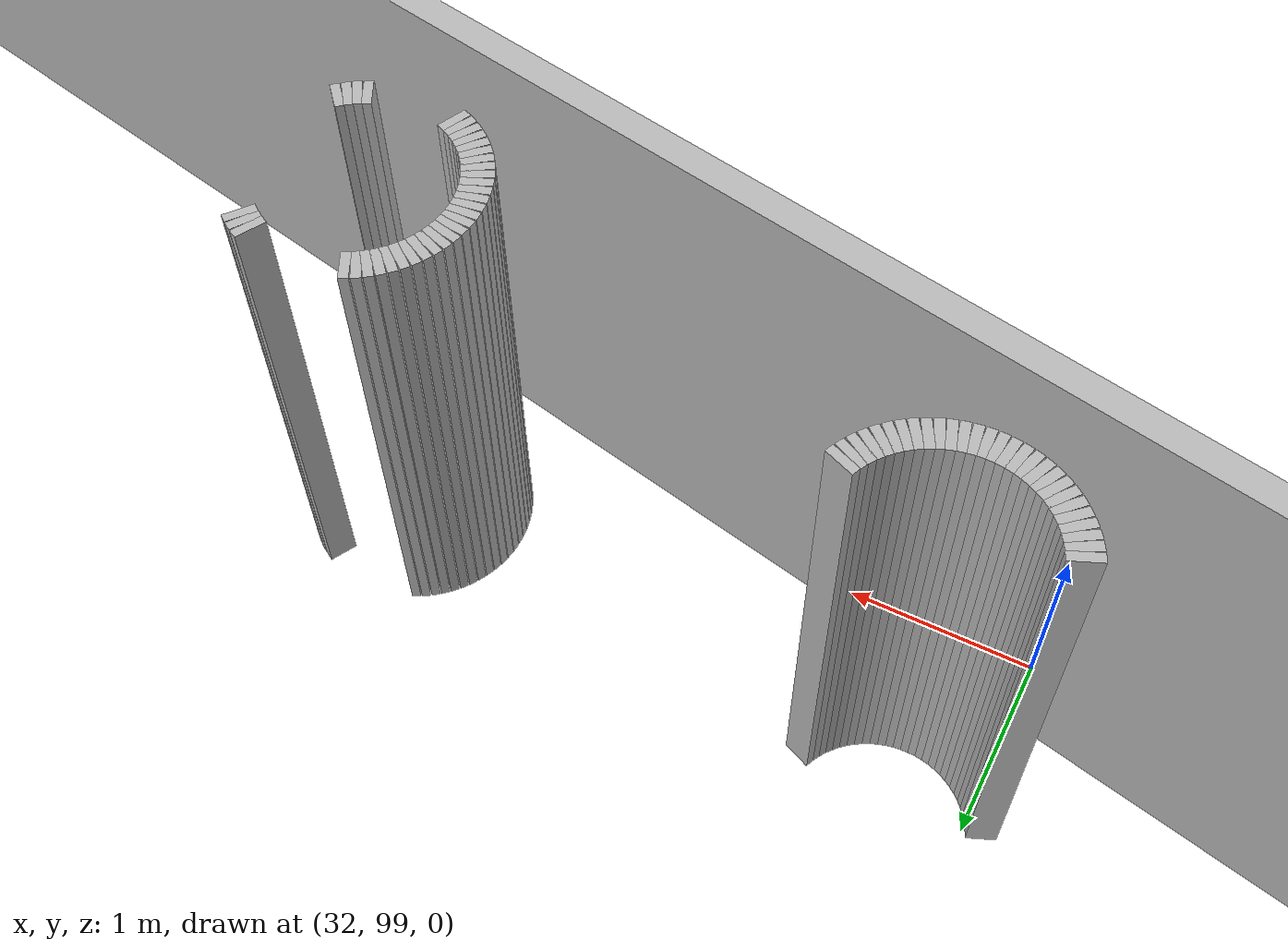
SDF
<sdf version="1.6">
 <model name="sps_1301">
  <static>1</static>
  <allow_auto_disable>0</allow_auto_disable>
  <link name="Wall2087">
   <collision name="collision"><geometry><box><size>0.0452834 0.15 2.5</size></box></geometry></collision>
   <visual name="visual">
    <geometry><box><size>0.0452834 0.15 2.5</size></box></geometry>
    <transparency>0.0</transparency>
   </visual>
   <pose>32.868 99.9762 1.25 0 0 -1.96507</pose>
  </link>
  <link name="Wall2088">
   <collision name="collision"><geometry><box><size>0.0455348 0.15 2.5</size></box></geometry></collision>
   <visual name="visual">
    <geometry><box><size>0.0455348 0.15 2.5</size></box></geometry>
    <transparency>0.0</transparency>
   </visual>
   <pose>32.8488 99.9351 1.25 0 0 -2.05003</pose>
  </link>
  <link name="Wall2089">
   <collision name="collision"><geometry><box><size>0.0452906 0.15 2.5</size></box></geometry></collision>
   <visual name="visual">
    <geometry><box><size>0.0452906 0.15 2.5</size></box></geometry>
    <transparency>0.0</transparency>
   </visual>
   <pose>32.8261 99.8958 1.25 0 0 -2.14011</pose>
  </link>
  <link name="Wall2090">
   <collision name="collision"><geometry><box><size>0.0453637 0.15 2.5</size></box></geometry></collision>
   <visual name="visual">
    <geometry><box><size>0.0453637 0.15 2.5</size></box></geometry>
    <transparency>0.0</transparency>
   </visual>
   <pose>32.8001 99.8587 1.25 0 0 -2.22452</pose>
  </link>
  <link name="Wall2091">
   <collision name="collision"><geometry><box><size>0.0453598 0.15 2.5</size></box></geometry></collision>
   <visual name="visual">
    <geometry><box><size>0.0453598 0.15 2.5</size></box></geometry>
    <transparency>0.0</transparency>
   </visual>
   <pose>32.771 99.824 1.25 0 0 -2.31241</pose>
  </link>
  <link name="Wall2092">
   <collision name="collision"><geometry><box><size>0.0454087 0.15 2.5</size></box></geometry></collision>
   <visual name="visual">
    <geometry><box><size>0.0454087 0.15 2.5</size></box></geometry>
    <transparency>0.0</transparency>
   </visual>
   <pose>32.7389 99.792 1.25 0 0 -2.40278</pose>
  </link>
  <link name="Wall2093">
   <collision name="collision"><geometry><box><size>0.0453637 0.15 2.5</size></box></geometry></collision>
   <visual name="visual">
    <geometry><box><size>0.0453637 0.15 2.5</size></box></geometry>
    <transparency>0.0</transparency>
   </visual>
   <pose>32.7041 99.7629 1.25 0 0 -2.48787</pose>
  </link>
  <link name="Wall2094">
   <collision name="collision"><geometry><box><size>0.045342 0.15 2.5</size></box></geometry></collision>
   <visual name="visual">
    <geometry><box><size>0.045342 0.15 2.5</size></box></geometry>
    <transparency>0.0</transparency>
   </visual>
   <pose>32.667 99.7369 1.25 0 0 -2.57301</pose>
  </link>
  <link name="Wall2095">
   <collision name="collision"><geometry><box><size>0.0453724 0.15 2.5</size></box></geometry></collision>
   <visual name="visual">
    <geometry><box><size>0.0453724 0.15 2.5</size></box></geometry>
    <transparency>0.0</transparency>
   </visual>
   <pose>32.6277 99.7142 1.25 0 0 -2.6605</pose>
  </link>
  <link name="Wall2096">
   <collision name="collision"><geometry><box><size>0.0453827 0.15 2.5</size></box></geometry></collision>
   <visual name="visual">
    <geometry><box><size>0.0453827 0.15 2.5</size></box></geometry>
    <transparency>0.0</transparency>
   </visual>
   <pose>32.5866 99.6951 1.25 0 0 -2.75259</pose>
  </link>
  <link name="Wall2097">
   <collision name="collision"><geometry><box><size>0.0452475 0.15 2.5</size></box></geometry></collision>
   <visual name="visual">
    <geometry><box><size>0.0452475 0.15 2.5</size></box></geometry>
    <transparency>0.0</transparency>
   </visual>
   <pose>32.5441 99.6797 1.25 0 0 -2.83605</pose>
  </link>
  <link name="Wall2098">
   <collision name="collision"><geometry><box><size>0.0453551 0.15 2.5</size></box></geometry></collision>
   <visual name="visual">
    <geometry><box><size>0.0453551 0.15 2.5</size></box></geometry>
    <transparency>0.0</transparency>
   </visual>
   <pose>32.5004 99.6679 1.25 0 0 -2.92044</pose>
  </link>
  <link name="Wall2099">
   <collision name="collision"><geometry><box><size>0.0453551 0.15 2.5</size></box></geometry></collision>
   <visual name="visual">
    <geometry><box><size>0.0453551 0.15 2.5</size></box></geometry>
    <transparency>0.0</transparency>
   </visual>
   <pose>32.4557 99.66 1.25 0 0 -3.0134</pose>
  </link>
  <link name="Wall2100">
   <collision name="collision"><geometry><box><size>0.0454548 0.15 2.5</size></box></geometry></collision>
   <visual name="visual">
    <geometry><box><size>0.0454548 0.15 2.5</size></box></geometry>
    <transparency>0.0</transparency>
   </visual>
   <pose>32.4105 99.6561 1.25 0 0 -3.09727</pose>
  </link>
  <link name="Wall2101">
   <collision name="collision"><geometry><box><size>0.0454548 0.15 2.5</size></box></geometry></collision>
   <visual name="visual">
    <geometry><box><size>0.0454548 0.15 2.5</size></box></geometry>
    <transparency>0.0</transparency>
   </visual>
   <pose>32.3651 99.6561 1.25 0 -0 3.09727</pose>
  </link>
  <link name="Wall2102">
   <collision name="collision"><geometry><box><size>0.0451973 0.15 2.5</size></box></geometry></collision>
   <visual name="visual">
    <geometry><box><size>0.0451973 0.15 2.5</size></box></geometry>
    <transparency>0.0</transparency>
   </visual>
   <pose>32.32 99.6601 1.25 0 -0 3.00886</pose>
  </link>
  <link name="Wall2103">
   <collision name="collision"><geometry><box><size>0.0454345 0.15 2.5</size></box></geometry></collision>
   <visual name="visual">
    <geometry><box><size>0.0454345 0.15 2.5</size></box></geometry>
    <transparency>0.0</transparency>
   </visual>
   <pose>32.2754 99.668 1.25 0 -0 2.92496</pose>
  </link>
  <link name="Wall2104">
   <collision name="collision"><geometry><box><size>0.0453057 0.15 2.5</size></box></geometry></collision>
   <visual name="visual">
    <geometry><box><size>0.0453057 0.15 2.5</size></box></geometry>
    <transparency>0.0</transparency>
   </visual>
   <pose>32.2317 99.6797 1.25 0 -0 2.83646</pose>
  </link>
  <link name="Wall2105">
   <collision name="collision"><geometry><box><size>0.0454525 0.15 2.5</size></box></geometry></collision>
   <visual name="visual">
    <geometry><box><size>0.0454525 0.15 2.5</size></box></geometry>
    <transparency>0.0</transparency>
   </visual>
   <pose>32.189 99.6952 1.25 0 -0 2.74887</pose>
  </link>
  <link name="Wall2106">
   <collision name="collision"><geometry><box><size>0.0453724 0.15 2.5</size></box></geometry></collision>
   <visual name="visual">
    <geometry><box><size>0.0453724 0.15 2.5</size></box></geometry>
    <transparency>0.0</transparency>
   </visual>
   <pose>32.1479 99.7144 1.25 0 -0 2.6605</pose>
  </link>
  <link name="Wall2107">
   <collision name="collision"><geometry><box><size>0.0452906 0.15 2.5</size></box></geometry></collision>
   <visual name="visual">
    <geometry><box><size>0.0452906 0.15 2.5</size></box></geometry>
    <transparency>0.0</transparency>
   </visual>
   <pose>32.1088 99.7371 1.25 0 -0 2.57228</pose>
  </link>
  <link name="Wall2108">
   <collision name="collision"><geometry><box><size>0.0453637 0.15 2.5</size></box></geometry></collision>
   <visual name="visual">
    <geometry><box><size>0.0453637 0.15 2.5</size></box></geometry>
    <transparency>0.0</transparency>
   </visual>
   <pose>32.0717 99.7631 1.25 0 -0 2.48787</pose>
  </link>
  <link name="Wall2109">
   <collision name="collision"><geometry><box><size>0.0453148 0.15 2.5</size></box></geometry></collision>
   <visual name="visual">
    <geometry><box><size>0.0453148 0.15 2.5</size></box></geometry>
    <transparency>0.0</transparency>
   </visual>
   <pose>32.037 99.7922 1.25 0 -0 2.39907</pose>
  </link>
  <link name="Wall2110">
   <collision name="collision"><geometry><box><size>0.0453148 0.15 2.5</size></box></geometry></collision>
   <visual name="visual">
    <geometry><box><size>0.0453148 0.15 2.5</size></box></geometry>
    <transparency>0.0</transparency>
   </visual>
   <pose>32.005 99.8242 1.25 0 -0 2.31332</pose>
  </link>
  <link name="Wall2111">
   <collision name="collision"><geometry><box><size>0.0454753 0.15 2.5</size></box></geometry></collision>
   <visual name="visual">
    <geometry><box><size>0.0454753 0.15 2.5</size></box></geometry>
    <transparency>0.0</transparency>
   </visual>
   <pose>31.9758 99.8589 1.25 0 -0 2.22772</pose>
  </link>
  <link name="Wall2112">
   <collision name="collision"><geometry><box><size>0.0453984 0.15 2.5</size></box></geometry></collision>
   <visual name="visual">
    <geometry><box><size>0.0453984 0.15 2.5</size></box></geometry>
    <transparency>0.0</transparency>
   </visual>
   <pose>31.9498 99.8961 1.25 0 -0 2.13381</pose>
  </link>
  <link name="Wall2113">
   <collision name="collision"><geometry><box><size>0.0453724 0.15 2.5</size></box></geometry></collision>
   <visual name="visual">
    <geometry><box><size>0.0453724 0.15 2.5</size></box></geometry>
    <transparency>0.0</transparency>
   </visual>
   <pose>31.9271 99.9354 1.25 0 -0 2.05189</pose>
  </link>
  <link name="Wall2114">
   <collision name="collision"><geometry><box><size>0.0452271 0.15 2.5</size></box></geometry></collision>
   <visual name="visual">
    <geometry><box><size>0.0452271 0.15 2.5</size></box></geometry>
    <transparency>0.0</transparency>
   </visual>
   <pose>31.908 99.9764 1.25 0 -0 1.96559</pose>
  </link>
  <link name="Wall2384">
   <collision name="collision"><geometry><box><size>0.0453637 0.15 2.5</size></box></geometry></collision>
   <visual name="visual">
    <geometry><box><size>0.0453637 0.15 2.5</size></box></geometry>
    <transparency>0.0</transparency>
   </visual>
   <pose>35.6447 99.9473 1.25 0 0 -0.653727</pose>
  </link>
  <link name="Wall2404">
   <collision name="collision"><geometry><box><size>0.0453186 0.15 2.5</size></box></geometry></collision>
   <visual name="visual">
    <geometry><box><size>0.0453186 0.15 2.5</size></box></geometry>
    <transparency>0.0</transparency>
   </visual>
   <pose>35.6792 99.1522 1.25 0 0 -2.40097</pose>
  </link>
  <link name="Wall2405">
   <collision name="collision"><geometry><box><size>0.0454008 0.15 2.5</size></box></geometry></collision>
   <visual name="visual">
    <geometry><box><size>0.0454008 0.15 2.5</size></box></geometry>
    <transparency>0.0</transparency>
   </visual>
   <pose>35.6444 99.1231 1.25 0 0 -2.4868</pose>
  </link>
  <link name="Wall2406">
   <collision name="collision"><geometry><box><size>0.0452577 0.15 2.5</size></box></geometry></collision>
   <visual name="visual">
    <geometry><box><size>0.0452577 0.15 2.5</size></box></geometry>
    <transparency>0.0</transparency>
   </visual>
   <pose>35.6074 99.0971 1.25 0 0 -2.57342</pose>
  </link>
  <link name="Wall2407">
   <collision name="collision"><geometry><box><size>0.0453724 0.15 2.5</size></box></geometry></collision>
   <visual name="visual">
    <geometry><box><size>0.0453724 0.15 2.5</size></box></geometry>
    <transparency>0.0</transparency>
   </visual>
   <pose>35.5682 99.0744 1.25 0 0 -2.6605</pose>
  </link>
  <link name="Wall2417">
   <collision name="collision"><geometry><box><size>0.0452271 0.15 2.5</size></box></geometry></collision>
   <visual name="visual">
    <geometry><box><size>0.0452271 0.15 2.5</size></box></geometry>
    <transparency>0.0</transparency>
   </visual>
   <pose>35.1294 99.0554 1.25 0 -0 2.7468</pose>
  </link>
  <link name="Wall2418">
   <collision name="collision"><geometry><box><size>0.0453724 0.15 2.5</size></box></geometry></collision>
   <visual name="visual">
    <geometry><box><size>0.0453724 0.15 2.5</size></box></geometry>
    <transparency>0.0</transparency>
   </visual>
   <pose>35.0884 99.0746 1.25 0 -0 2.6605</pose>
  </link>
  <link name="Wall2419">
   <collision name="collision"><geometry><box><size>0.045342 0.15 2.5</size></box></geometry></collision>
   <visual name="visual">
    <geometry><box><size>0.045342 0.15 2.5</size></box></geometry>
    <transparency>0.0</transparency>
   </visual>
   <pose>35.0492 99.0973 1.25 0 -0 2.57301</pose>
  </link>
  <link name="Wall2420">
   <collision name="collision"><geometry><box><size>0.0453637 0.15 2.5</size></box></geometry></collision>
   <visual name="visual">
    <geometry><box><size>0.0453637 0.15 2.5</size></box></geometry>
    <transparency>0.0</transparency>
   </visual>
   <pose>35.012 99.1233 1.25 0 -0 2.48787</pose>
  </link>
  <link name="Wall2421">
   <collision name="collision"><geometry><box><size>0.0454087 0.15 2.5</size></box></geometry></collision>
   <visual name="visual">
    <geometry><box><size>0.0454087 0.15 2.5</size></box></geometry>
    <transparency>0.0</transparency>
   </visual>
   <pose>34.9773 99.1524 1.25 0 -0 2.40278</pose>
  </link>
  <link name="Wall2422">
   <collision name="collision"><geometry><box><size>0.0453148 0.15 2.5</size></box></geometry></collision>
   <visual name="visual">
    <geometry><box><size>0.0453148 0.15 2.5</size></box></geometry>
    <transparency>0.0</transparency>
   </visual>
   <pose>34.9452 99.1844 1.25 0 -0 2.31332</pose>
  </link>
  <link name="Wall2423">
   <collision name="collision"><geometry><box><size>0.0453637 0.15 2.5</size></box></geometry></collision>
   <visual name="visual">
    <geometry><box><size>0.0453637 0.15 2.5</size></box></geometry>
    <transparency>0.0</transparency>
   </visual>
   <pose>34.916 99.2191 1.25 0 -0 2.22452</pose>
  </link>
  <link name="Wall2424">
   <collision name="collision"><geometry><box><size>0.0454964 0.15 2.5</size></box></geometry></collision>
   <visual name="visual">
    <geometry><box><size>0.0454964 0.15 2.5</size></box></geometry>
    <transparency>0.0</transparency>
   </visual>
   <pose>34.89 99.2563 1.25 0 -0 2.13722</pose>
  </link>
  <link name="Wall2425">
   <collision name="collision"><geometry><box><size>0.04526 0.15 2.5</size></box></geometry></collision>
   <visual name="visual">
    <geometry><box><size>0.04526 0.15 2.5</size></box></geometry>
    <transparency>0.0</transparency>
   </visual>
   <pose>34.8675 99.2956 1.25 0 -0 2.04711</pose>
  </link>
  <link name="Wall2426">
   <collision name="collision"><geometry><box><size>0.0454525 0.15 2.5</size></box></geometry></collision>
   <visual name="visual">
    <geometry><box><size>0.0454525 0.15 2.5</size></box></geometry>
    <transparency>0.0</transparency>
   </visual>
   <pose>34.8484 99.3367 1.25 0 -0 1.96352</pose>
  </link>
  <link name="Wall2427">
   <collision name="collision"><geometry><box><size>0.0453057 0.15 2.5</size></box></geometry></collision>
   <visual name="visual">
    <geometry><box><size>0.0453057 0.15 2.5</size></box></geometry>
    <transparency>0.0</transparency>
   </visual>
   <pose>34.8329 99.3793 1.25 0 -0 1.87593</pose>
  </link>
  <link name="Wall2428">
   <collision name="collision"><geometry><box><size>0.0452689 0.15 2.5</size></box></geometry></collision>
   <visual name="visual">
    <geometry><box><size>0.0452689 0.15 2.5</size></box></geometry>
    <transparency>0.0</transparency>
   </visual>
   <pose>34.8212 99.423 1.25 0 -0 1.78961</pose>
  </link>
  <link name="Wall2429">
   <collision name="collision"><geometry><box><size>0.0453788 0.15 2.5</size></box></geometry></collision>
   <visual name="visual">
    <geometry><box><size>0.0453788 0.15 2.5</size></box></geometry>
    <transparency>0.0</transparency>
   </visual>
   <pose>34.8133 99.4676 1.25 0 -0 1.70299</pose>
  </link>
  <link name="Wall2430">
   <collision name="collision"><geometry><box><size>0.0454548 0.15 2.5</size></box></geometry></collision>
   <visual name="visual">
    <geometry><box><size>0.0454548 0.15 2.5</size></box></geometry>
    <transparency>0.0</transparency>
   </visual>
   <pose>34.8093 99.5128 1.25 0 -0 1.61512</pose>
  </link>
  <link name="Wall2431">
   <collision name="collision"><geometry><box><size>0.0452719 0.15 2.5</size></box></geometry></collision>
   <visual name="visual">
    <geometry><box><size>0.0452719 0.15 2.5</size></box></geometry>
    <transparency>0.0</transparency>
   </visual>
   <pose>34.8093 99.5581 1.25 0 -0 1.52629</pose>
  </link>
  <link name="Wall2432">
   <collision name="collision"><geometry><box><size>0.0453788 0.15 2.5</size></box></geometry></collision>
   <visual name="visual">
    <geometry><box><size>0.0453788 0.15 2.5</size></box></geometry>
    <transparency>0.0</transparency>
   </visual>
   <pose>34.8133 99.6032 1.25 0 -0 1.4386</pose>
  </link>
  <link name="Wall2433">
   <collision name="collision"><geometry><box><size>0.0455072 0.15 2.5</size></box></geometry></collision>
   <visual name="visual">
    <geometry><box><size>0.0455072 0.15 2.5</size></box></geometry>
    <transparency>0.0</transparency>
   </visual>
   <pose>34.8212 99.6479 1.25 0 -0 1.35315</pose>
  </link>
  <link name="Wall2434">
   <collision name="collision"><geometry><box><size>0.0452475 0.15 2.5</size></box></geometry></collision>
   <visual name="visual">
    <geometry><box><size>0.0452475 0.15 2.5</size></box></geometry>
    <transparency>0.0</transparency>
   </visual>
   <pose>34.8329 99.6917 1.25 0 -0 1.26526</pose>
  </link>
  <link name="Wall2435">
   <collision name="collision"><geometry><box><size>0.0452834 0.15 2.5</size></box></geometry></collision>
   <visual name="visual">
    <geometry><box><size>0.0452834 0.15 2.5</size></box></geometry>
    <transparency>0.0</transparency>
   </visual>
   <pose>34.8484 99.7342 1.25 0 -0 1.17652</pose>
  </link>
  <link name="Wall2436">
   <collision name="collision"><geometry><box><size>0.0455348 0.15 2.5</size></box></geometry></collision>
   <visual name="visual">
    <geometry><box><size>0.0455348 0.15 2.5</size></box></geometry>
    <transparency>0.0</transparency>
   </visual>
   <pose>34.8676 99.7753 1.25 0 -0 1.09156</pose>
  </link>
  <link name="Wall2437">
   <collision name="collision"><geometry><box><size>0.0453092 0.15 2.5</size></box></geometry></collision>
   <visual name="visual">
    <geometry><box><size>0.0453092 0.15 2.5</size></box></geometry>
    <transparency>0.0</transparency>
   </visual>
   <pose>34.8903 99.8146 1.25 0 -0 1.00334</pose>
  </link>
  <link name="Wall2438">
   <collision name="collision"><geometry><box><size>0.0454008 0.15 2.5</size></box></geometry></collision>
   <visual name="visual">
    <geometry><box><size>0.0454008 0.15 2.5</size></box></geometry>
    <transparency>0.0</transparency>
   </visual>
   <pose>34.9163 99.8517 1.25 0 -0 0.916002</pose>
  </link>
  <link name="Wall2439">
   <collision name="collision"><geometry><box><size>0.0453974 0.15 2.5</size></box></geometry></collision>
   <visual name="visual">
    <geometry><box><size>0.0453974 0.15 2.5</size></box></geometry>
    <transparency>0.0</transparency>
   </visual>
   <pose>34.9455 99.8864 1.25 0 -0 0.826289</pose>
  </link>
  <link name="Wall2440">
   <collision name="collision"><geometry><box><size>0.0453186 0.15 2.5</size></box></geometry></collision>
   <visual name="visual">
    <geometry><box><size>0.0453186 0.15 2.5</size></box></geometry>
    <transparency>0.0</transparency>
   </visual>
   <pose>34.9776 99.9184 1.25 0 -0 0.740624</pose>
  </link>
  <link name="Wall2441">
   <collision name="collision"><geometry><box><size>0.0453524 0.15 2.5</size></box></geometry></collision>
   <visual name="visual">
    <geometry><box><size>0.0453524 0.15 2.5</size></box></geometry>
    <transparency>0.0</transparency>
   </visual>
   <pose>35.0123 99.9475 1.25 0 -0 0.655614</pose>
  </link>
  <link name="Wall2442">
   <collision name="collision"><geometry><box><size>0.0453092 0.15 2.5</size></box></geometry></collision>
   <visual name="visual">
    <geometry><box><size>0.0453092 0.15 2.5</size></box></geometry>
    <transparency>0.0</transparency>
   </visual>
   <pose>35.0493 99.9735 1.25 0 -0 0.567452</pose>
  </link>
  <link name="Wall2443">
   <collision name="collision"><geometry><box><size>0.0453724 0.15 2.5</size></box></geometry></collision>
   <visual name="visual">
    <geometry><box><size>0.0453724 0.15 2.5</size></box></geometry>
    <transparency>0.0</transparency>
   </visual>
   <pose>35.0886 99.9962 1.25 0 -0 0.481095</pose>
  </link>
  <link name="Wall2454">
   <collision name="collision"><geometry><box><size>0.0453724 0.15 2.5</size></box></geometry></collision>
   <visual name="visual">
    <geometry><box><size>0.0453724 0.15 2.5</size></box></geometry>
    <transparency>0.0</transparency>
   </visual>
   <pose>35.5684 99.996 1.25 0 0 -0.481095</pose>
  </link>
  <link name="Wall2455">
   <collision name="collision"><geometry><box><size>0.045342 0.15 2.5</size></box></geometry></collision>
   <visual name="visual">
    <geometry><box><size>0.045342 0.15 2.5</size></box></geometry>
    <transparency>0.0</transparency>
   </visual>
   <pose>35.6076 99.9733 1.25 0 0 -0.568588</pose>
  </link>
  <link name="Wall2699">
   <collision name="collision"><geometry><box><size>156.708 0.15 2.5</size></box></geometry></collision>
   <visual name="visual">
    <geometry><box><size>156.708 0.15 2.5</size></box></geometry>
    <transparency>0.0</transparency>
   </visual>
   <pose>32.4697 99.1524 1.25 0 -0 2.92734</pose>
  </link>
 </model>
</sdf>
